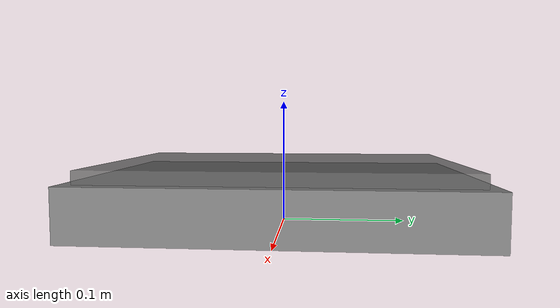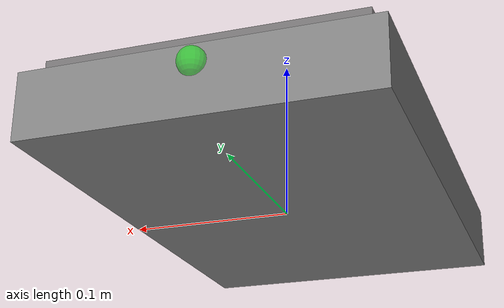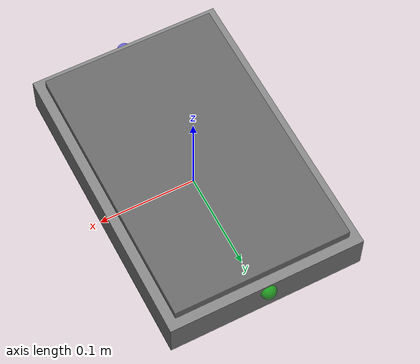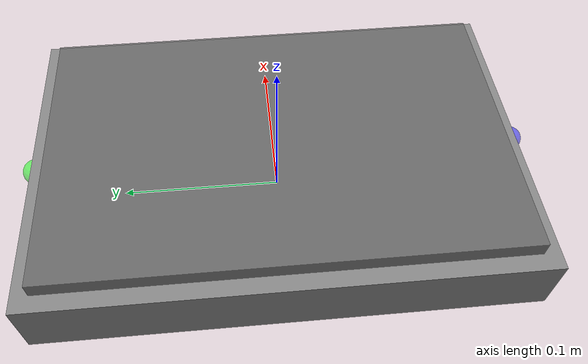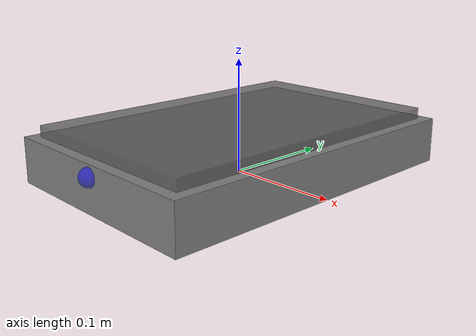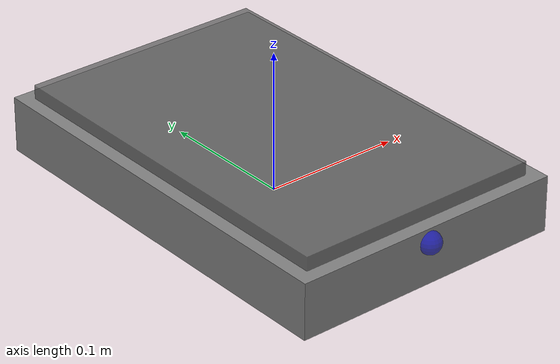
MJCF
<mujoco model="grey_tray">
  <asset>
    <material name="grey_plastic" rgba="0.5 0.5 0.5 1" specular="0.5" shininess="0.5"/>
  </asset>

  <worldbody>
    <body>
      <body name="object" pos="0 0 0">
        <body name="grey_tray" pos="0 0 0">
          <geom name="tray_main"
                type="box"
                size="0.1 0.15 0.02"
                pos="0 0 0.02"
                material="grey_plastic"
                group="1"
                mass="0.3"/>

          <geom name="tray_interior"
                type="box"
                size="0.09 0.14 0.015"
                pos="0 0 0.035"
                rgba="0.4 0.4 0.4 0.8"
                group="0"
                contype="0"
                conaffinity="0"/>

          <site name="contain_region"
                type="box"
                pos="0 0 0.04"
                size="0.19 0.18 0.03"
                quat="1 0 0 0"
                group="0"
                rgba="0.8 0.8 0 0"/>

          <site name="top_center" pos="0 0 0.04" size="0.01" rgba="1 0 0 0.5" quat="1 0 0 0"/>
          <site name="front_edge" pos="0 0.15 0.03" size="0.008" rgba="0 1 0 0.5" quat="1 0 0 0"/>
          <site name="back_edge" pos="0 -0.15 0.03" size="0.008" rgba="0 0 1 0.5" quat="1 0 0 0"/>
        </body>
      </body>
      <!-- 新增3个必选辅助site，与jenga_tower.xml同级，适配托盘尺寸 -->
      <site rgba="0 0 0 0" size="0.005" pos="0 0 -0.01" name="bottom_site" />
      <site rgba="0 0 0 0" size="0.005" pos="0 0 0.04" name="top_site" />
      <site rgba="0 0 0 0" size="0.005" pos="0.095 0 0" name="horizontal_radius_site" />
    </body>
  </worldbody>
</mujoco>
